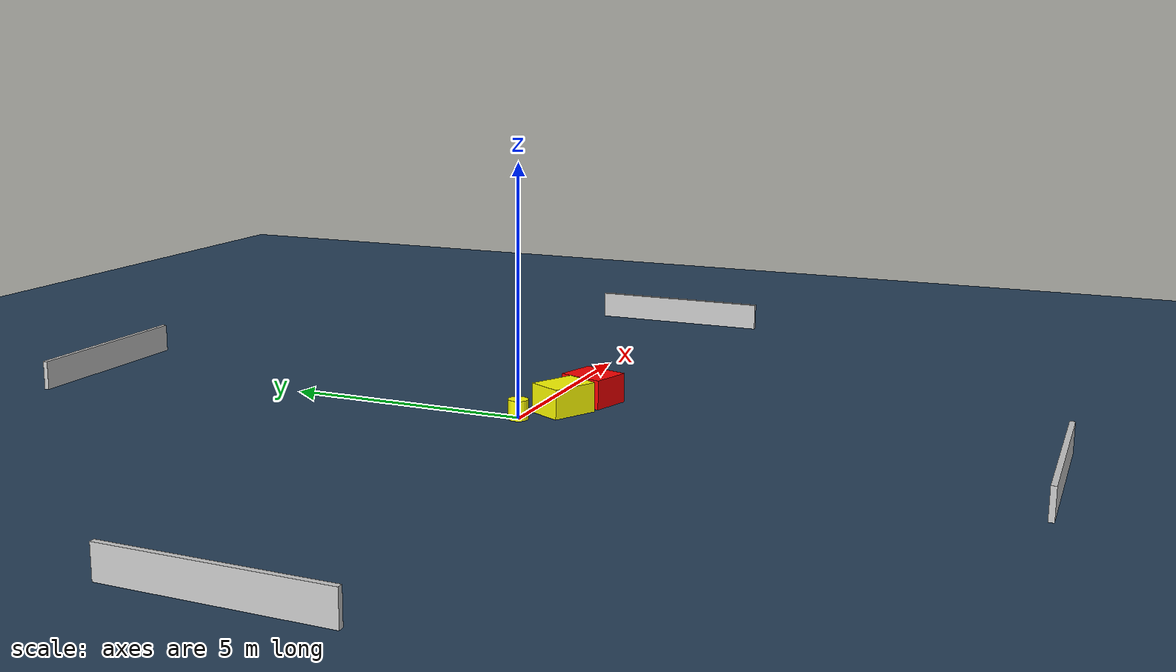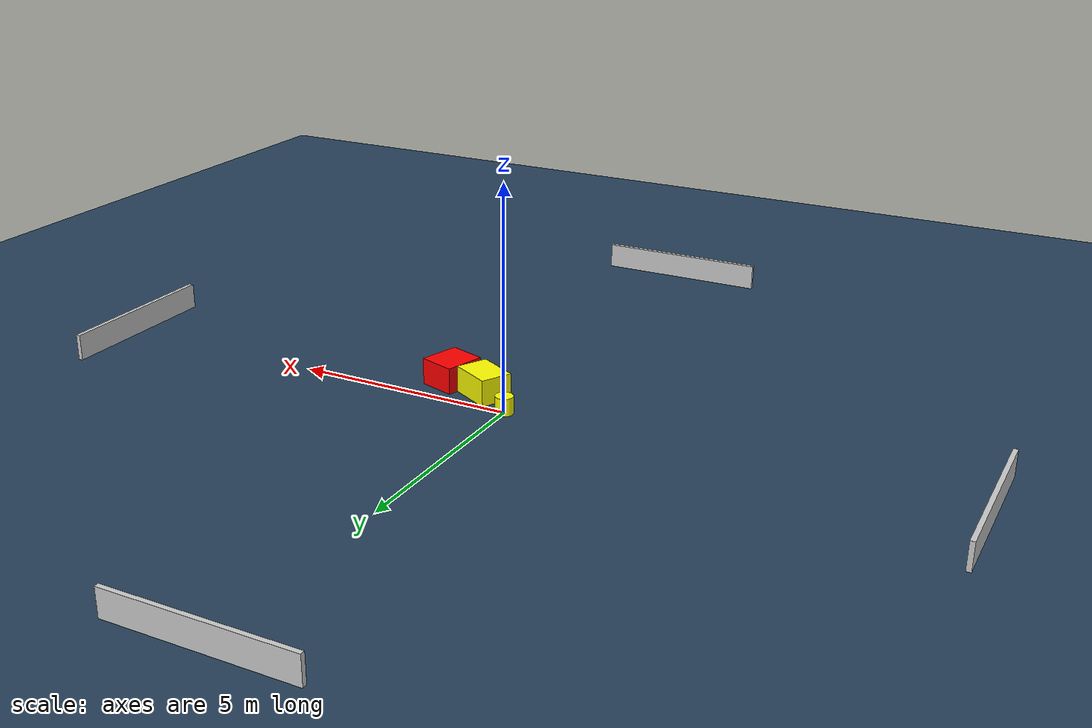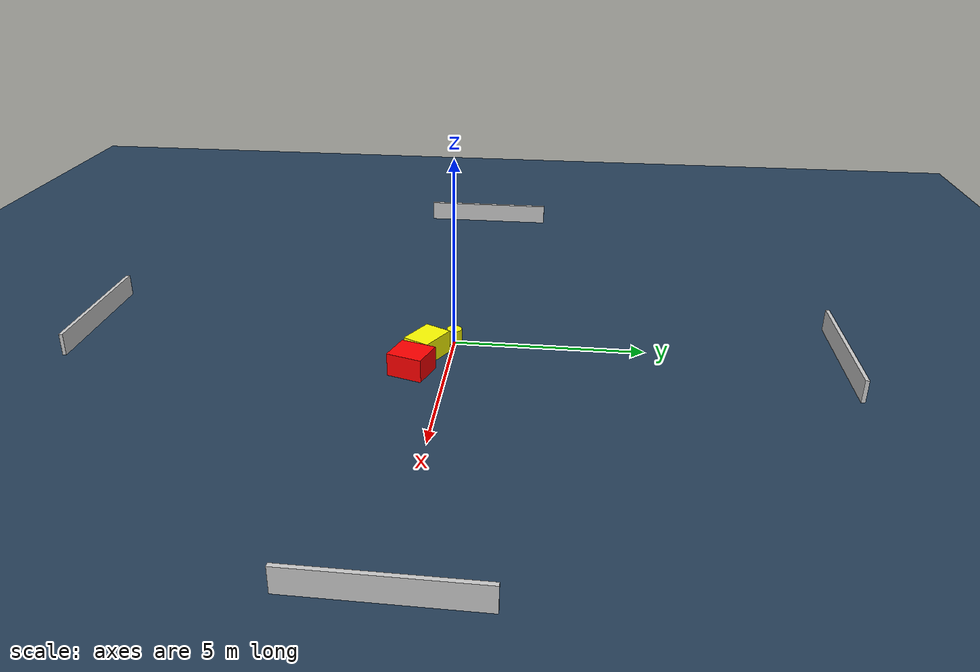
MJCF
<?xml version="1.0" ?>
<mujoco model="generated_environment">
  <option timestep="0.01" integrator="RK4" cone="elliptic"/>
  <default>
    <geom density="1"/>
  </default>
  <asset>
    <texture builtin="gradient" height="3072" name="skybox" rgb1="0.3 0.5 0.7" rgb2="0 0 0" type="skybox" width="512"/>
    <texture builtin="checker" height="300" name="groundplane" rgb1="0.2 0.3 0.4" rgb2="0.1 0.2 0.3" type="2d" width="300"/>
    <material name="groundplane" reflectance="0.2" texrepeat="5 5" texture="groundplane"/>
  </asset>
  <worldbody>
    <light dir="0 0 -1" directional="true" pos="0 0 1.5"/>
    <geom condim="3" friction="0.5 0.005 0.001" material="groundplane" name="floor" pos="0 0 0" size="0 0 0.05" type="plane"/>
    <body name="walls">
      <geom name="wall_1" condim="4" pos="-10.0 0.0 0.3" rgba="0.800000011920929 0.800000011920929 0.800000011920929 1.0" size="0.05 2.0 0.3" type="box"/>
      <geom name="wall_2" condim="4" pos="10.0 0.0 0.3" rgba="0.800000011920929 0.800000011920929 0.800000011920929 1.0" size="0.05 2.0 0.3" type="box"/>
      <geom name="wall_3" condim="4" pos="0.0 -10.0 0.3" rgba="0.800000011920929 0.800000011920929 0.800000011920929 1.0" size="2.0 0.05 0.3" type="box"/>
      <geom name="wall_4" condim="4" pos="0.0 10.0 0.3" rgba="0.800000011920929 0.800000011920929 0.800000011920929 1.0" size="2.0 0.05 0.3" type="box"/>
    </body>
    <body name="robot">
      <joint name="joint_x" type="slide" pos="0 0 0" axis="1 0 0"/>
      <joint name="joint_y" type="slide" pos="0 0 0" axis="0 1 0"/>
      <geom name="robot" type="cylinder" pos="0.0 0.0 0.2" size="0.2 0.2 0.0" mass="5.0" friction="1.0 0.005 0.0001" condim="4" rgba="1.0 1.0 0.0 1.0"/>
    </body>
    <body name="obstacle_1_movable">
      <geom name="obstacle_1_movable" condim="4" pos="0.8228688457323553 -0.610613160389412 0.3" euler="0 0 241.84980685851608" friction="0.0 0.005 0.001" rgba="1.0 1.0 0.0 1.0" size="0.36729642411081775 0.496838033484689 0.3" type="box" mass="0.1"/>
      <joint type="free"/>
    </body>
    <body name="obstacle_2_static">
      <geom name="obstacle_2_static" condim="4" pos="1.77208619969664 -0.8690928676520949 0.3" euler="0 0 162.34811478294574" friction="0.0 0.005 0.001" rgba="1.0 0.0 0.0 1.0" size="0.42432583405635604 0.4684420702371138 0.3" type="box"/>
    </body>
  </worldbody>
  <actuator>
    <motor name="actuator_x" joint="joint_x" gear="1" ctrlrange="-1 1"/>
    <motor name="actuator_y" joint="joint_y" gear="1" ctrlrange="-1 1"/>
  </actuator>
</mujoco>
